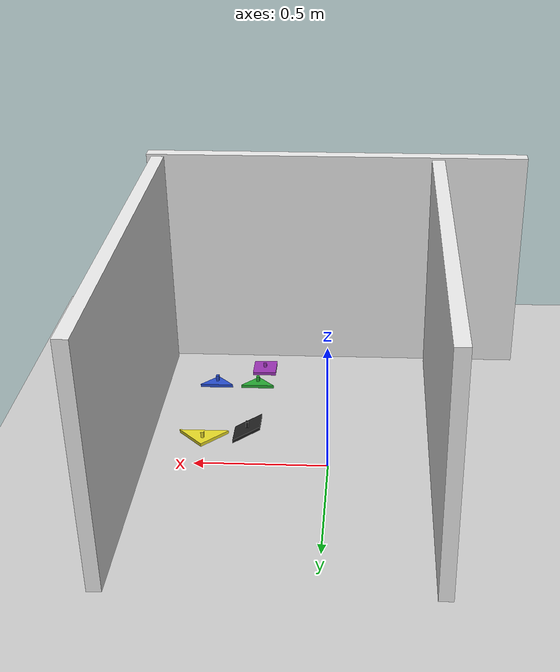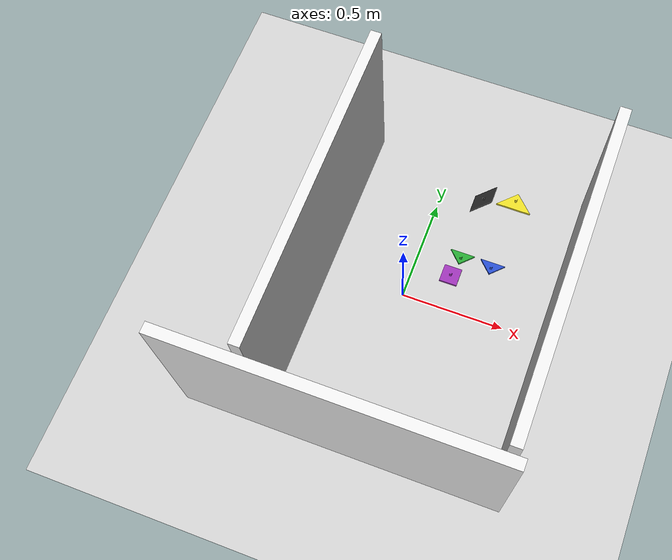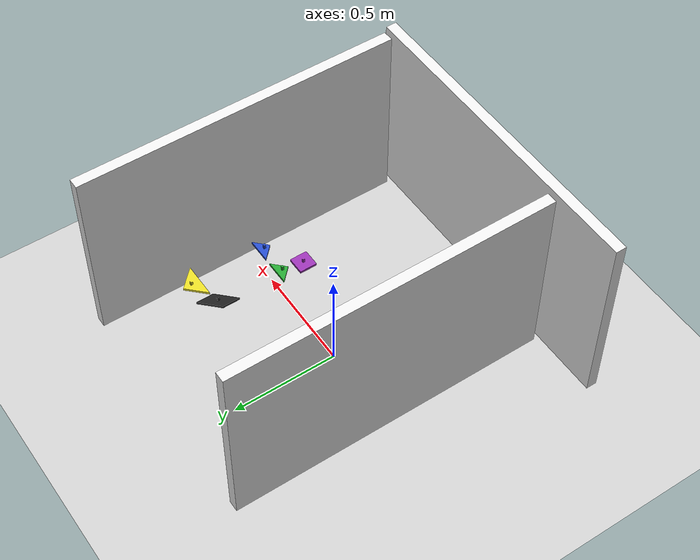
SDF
<sdf version="1.5">
 <world name="panda_pick_and_place">
  <include><uri>model://sun</uri></include>
  <include><uri>model://ground_plane</uri></include>
  <include><uri>model://tangram_3</uri><pose>0.2 0.3 0.41 0 0 0</pose></include>
  <include><uri>model://tangram_4</uri><pose>0.18 0.1 0.41 0 0 0</pose></include>
  <include><uri>model://tangram_5</uri><pose>0.32 0.1 0.41 0 0 0</pose></include>
  <include><uri>model://tangram_6</uri><pose>0.18 -0.03 0.42 0 0 0</pose></include>
  <include><uri>model://tangram_7</uri><pose>0.3 0.4 0.41 0 0 0</pose></include>
  <include><uri>model://flat_back</uri><pose>-0.4 0 0.481 0 0 0</pose></include>
  <include><uri>model://flat_front</uri><pose>0.7 0 0.481 0 0 0</pose></include>
  <include><uri>model://flat_right</uri><pose>0 -0.8 0.481 0 0 1.571</pose></include>
 </world>
</sdf>

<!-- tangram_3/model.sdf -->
<sdf version='1.7'>
  <model name='tangram_3'>
    <link name='tangram_3'>
      <inertial>
        <!--NOTE: Uses Polyethylene density to calculate the mass
        see https://en.wikipedia.org/wiki/Polyethylene
        -->
        <mass>0.00002</mass>
        <inertia  ixx="0.042939559330194194" ixy="0" ixz="0" iyy="0.01186916406652232" iyz="0" izz="0.051605390063383175" />
      </inertial>
      <visual name='visual'>
        <geometry>
          <mesh>
            <uri>model://tangram_3/B2_coordinate_fixedv1.stl</uri>
            <scale>0.0001 0.0001 0.0001</scale>
          </mesh>
        </geometry>
        <material>
          <script>
            <uri>file://media/materials/scripts/gazebo.material</uri>
            <name>Gazebo/Black</name>
          </script>
          <shader type='pixel'/>
        </material>
      </visual>
      <collision name='collision'>
        <geometry>
          <mesh>
            <uri>model://tangram_3/B2_coordinate_fixedv1.stl</uri>
            <scale>0.0001 0.0001 0.0001</scale>
          </mesh>
        </geometry>
        <surface>
          <!--NOTE: Uses dynamic friction of brick on a wood surface
          see https://www.engineeringtoolbox.com/friction-coefficients-d_778.html
          -->
          <friction>
            <ode>
              <mu>0.60</mu>
              <mu2>0.60</mu2>
              <fdir1>0 0 0</fdir1>
              <slip1>0</slip1>
              <slip2>0</slip2>
            </ode>
            <torsional>
              <coefficient>1</coefficient>
              <patch_radius>0</patch_radius>
              <surface_radius>0</surface_radius>
              <use_patch_radius>1</use_patch_radius>
              <ode>
                <slip>0</slip>
              </ode>
            </torsional>
          </friction>
          <bounce>
            <restitution_coefficient>0</restitution_coefficient>
            <threshold>1e+06</threshold>
          </bounce>
          <contact>
            <collide_without_contact>0</collide_without_contact>
            <collide_without_contact_bitmask>1</collide_without_contact_bitmask>
            <collide_bitmask>1</collide_bitmask>
            <ode>
              <soft_cfm>0</soft_cfm>
              <soft_erp>0.2</soft_erp>
              <kp>1e+13</kp>
              <kd>1</kd>
              <max_vel>0</max_vel>
              <min_depth>0.003</min_depth>
            </ode>
            <bullet>
              <split_impulse>1</split_impulse>
              <split_impulse_penetration_threshold>-0.01</split_impulse_penetration_threshold>
              <soft_cfm>0</soft_cfm>
              <soft_erp>0.2</soft_erp>
              <kp>1e+13</kp>
              <kd>1</kd>
            </bullet>
          </contact>
        </surface>
      </collision>
    </link>
  </model>
</sdf>

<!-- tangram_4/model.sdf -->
<sdf version='1.7'>
  <model name='tangram_4'>
    <link name='tangram_4'>
      <inertial>
        <!--NOTE: Uses Polyethylene density to calculate the mass
        see https://en.wikipedia.org/wiki/Polyethylene
        -->
        <mass>0.00002</mass>
        <inertia  ixx="0.006764475707980556" ixy="0" ixz="0" iyy="0.022252902831922224" iyz="0" izz="0.025814045206569443" />
      </inertial>
      <visual name='visual'>
        <geometry>
          <mesh>
            <uri>model://tangram_4/C1x2_coordinate_fixedv1.stl</uri>
            <scale>0.0001 0.0001 0.0001</scale>
          </mesh>
        </geometry>
        <material>
          <script>
            <uri>file://media/materials/scripts/gazebo.material</uri>
            <name>Gazebo/Green</name>
          </script>
          <shader type='pixel'/>
        </material>
      </visual>
      <collision name='collision'>
        <geometry>
          <mesh>
            <uri>model://tangram_4/C1x2_coordinate_fixedv1.stl</uri>
            <scale>0.0001 0.0001 0.0001</scale>
          </mesh>
        </geometry>
        <surface>
          <!--NOTE: Uses dynamic friction of brick on a wood surface
          see https://www.engineeringtoolbox.com/friction-coefficients-d_778.html
          -->
          <friction>
            <ode>
              <mu>0.60</mu>
              <mu2>0.60</mu2>
              <fdir1>0 0 0</fdir1>
              <slip1>0</slip1>
              <slip2>0</slip2>
            </ode>
            <torsional>
              <coefficient>1</coefficient>
              <patch_radius>0</patch_radius>
              <surface_radius>0</surface_radius>
              <use_patch_radius>1</use_patch_radius>
              <ode>
                <slip>0</slip>
              </ode>
            </torsional>
          </friction>
          <bounce>
            <restitution_coefficient>0</restitution_coefficient>
            <threshold>1e+06</threshold>
          </bounce>
          <contact>
            <collide_without_contact>0</collide_without_contact>
            <collide_without_contact_bitmask>1</collide_without_contact_bitmask>
            <collide_bitmask>1</collide_bitmask>
            <ode>
              <soft_cfm>0</soft_cfm>
              <soft_erp>0.2</soft_erp>
              <kp>1e+13</kp>
              <kd>1</kd>
              <max_vel>0</max_vel>
              <min_depth>0.003</min_depth>
            </ode>
            <bullet>
              <split_impulse>1</split_impulse>
              <split_impulse_penetration_threshold>-0.01</split_impulse_penetration_threshold>
              <soft_cfm>0</soft_cfm>
              <soft_erp>0.2</soft_erp>
              <kp>1e+13</kp>
              <kd>1</kd>
            </bullet>
          </contact>
        </surface>
      </collision>
    </link>
  </model>
</sdf>

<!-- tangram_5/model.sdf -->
<sdf version='1.7'>
  <model name='tangram_5'>
    <link name='tangram_5'>
      <inertial>
        <!--NOTE: Uses Polyethylene density to calculate the mass
        see https://en.wikipedia.org/wiki/Polyethylene
        -->
        <mass>0.00002</mass>
        <inertia  ixx="0.006764475707980556" ixy="0" ixz="0" iyy="0.022252902831922224" iyz="0" izz="0.025814045206569443" />
      </inertial>
      <visual name='visual'>
        <geometry>
          <mesh>
            <uri>model://tangram_5/C1x2_coordinate_fixedv1.stl</uri>
            <scale>0.0001 0.0001 0.0001</scale>
          </mesh>
        </geometry>
        <material>
          <script>
            <uri>file://media/materials/scripts/gazebo.material</uri>
            <name>Gazebo/Blue</name>
          </script>
          <shader type='pixel'/>
        </material>
      </visual>
      <collision name='collision'>
        <geometry>
          <mesh>
            <uri>model://tangram_5/C1x2_coordinate_fixedv1.stl</uri>
            <scale>0.0001 0.0001 0.0001</scale>
          </mesh>
        </geometry>
        <surface>
          <!--NOTE: Uses dynamic friction of brick on a wood surface
          see https://www.engineeringtoolbox.com/friction-coefficients-d_778.html
          -->
          <friction>
            <ode>
              <mu>0.60</mu>
              <mu2>0.60</mu2>
              <fdir1>0 0 0</fdir1>
              <slip1>0</slip1>
              <slip2>0</slip2>
            </ode>
            <torsional>
              <coefficient>1</coefficient>
              <patch_radius>0</patch_radius>
              <surface_radius>0</surface_radius>
              <use_patch_radius>1</use_patch_radius>
              <ode>
                <slip>0</slip>
              </ode>
            </torsional>
          </friction>
          <bounce>
            <restitution_coefficient>0</restitution_coefficient>
            <threshold>1e+06</threshold>
          </bounce>
          <contact>
            <collide_without_contact>0</collide_without_contact>
            <collide_without_contact_bitmask>1</collide_without_contact_bitmask>
            <collide_bitmask>1</collide_bitmask>
            <ode>
              <soft_cfm>0</soft_cfm>
              <soft_erp>0.2</soft_erp>
              <kp>1e+13</kp>
              <kd>1</kd>
              <max_vel>0</max_vel>
              <min_depth>0.003</min_depth>
            </ode>
            <bullet>
              <split_impulse>1</split_impulse>
              <split_impulse_penetration_threshold>-0.01</split_impulse_penetration_threshold>
              <soft_cfm>0</soft_cfm>
              <soft_erp>0.2</soft_erp>
              <kp>1e+13</kp>
              <kd>1</kd>
            </bullet>
          </contact>
        </surface>
      </collision>
    </link>
  </model>
</sdf>

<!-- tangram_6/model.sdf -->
<sdf version='1.7'>
  <model name='tangram_6'>
    <link name='tangram_6'>
      <inertial>
        <!--NOTE: Uses Polyethylene density to calculate the mass
        see https://en.wikipedia.org/wiki/Polyethylene
        -->
        <mass>0.00002</mass>
        <inertia  ixx="0.012003333333333333" ixy="0" ixz="0" iyy="0.012003333333333333" iyz="0" izz="0.020803333333333333" />
      </inertial>
      <visual name='visual'>
        <geometry>
          <mesh>
            <uri>model://tangram_6/D2_coordinate_fixedv1.stl</uri>
            <scale>0.0001 0.0001 0.0001</scale>
          </mesh>
        </geometry>
        <material>
          <script>
            <uri>file://media/materials/scripts/gazebo.material</uri>
            <name>Gazebo/Purple</name>
          </script>
          <shader type='pixel'/>
        </material>
      </visual>
      <collision name='collision'>
        <geometry>
          <mesh>
            <uri>model://tangram_6/D2_coordinate_fixedv1.stl</uri>
            <scale>0.0001 0.0001 0.0001</scale>
          </mesh>
        </geometry>
        <surface>
          <!--NOTE: Uses dynamic friction of brick on a wood surface
          see https://www.engineeringtoolbox.com/friction-coefficients-d_778.html
          -->
          <friction>
            <ode>
              <mu>0.60</mu>
              <mu2>0.60</mu2>
              <fdir1>0 0 0</fdir1>
              <slip1>0</slip1>
              <slip2>0</slip2>
            </ode>
            <torsional>
              <coefficient>1</coefficient>
              <patch_radius>0</patch_radius>
              <surface_radius>0</surface_radius>
              <use_patch_radius>1</use_patch_radius>
              <ode>
                <slip>0</slip>
              </ode>
            </torsional>
          </friction>
          <bounce>
            <restitution_coefficient>0</restitution_coefficient>
            <threshold>1e+06</threshold>
          </bounce>
          <contact>
            <collide_without_contact>0</collide_without_contact>
            <collide_without_contact_bitmask>1</collide_without_contact_bitmask>
            <collide_bitmask>1</collide_bitmask>
            <ode>
              <soft_cfm>0</soft_cfm>
              <soft_erp>0.2</soft_erp>
              <kp>1e+13</kp>
              <kd>1</kd>
              <max_vel>0</max_vel>
              <min_depth>0.003</min_depth>
            </ode>
            <bullet>
              <split_impulse>1</split_impulse>
              <split_impulse_penetration_threshold>-0.01</split_impulse_penetration_threshold>
              <soft_cfm>0</soft_cfm>
              <soft_erp>0.2</soft_erp>
              <kp>1e+13</kp>
              <kd>1</kd>
            </bullet>
          </contact>
        </surface>
      </collision>
    </link>
  </model>
</sdf>

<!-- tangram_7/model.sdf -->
<sdf version='1.7'>
  <model name='tangram_7'>
    <link name='tangram_7'>
      <inertial>
        <!--NOTE: Uses Polyethylene density to calculate the mass
        see https://en.wikipedia.org/wiki/Polyethylene
        -->
        <mass>0.00002</mass>
        <inertia  ixx="0.012003333333333333" ixy="0" ixz="0" iyy="0.043208333333333335" iyz="0" izz="0.05200833333333334" />
      </inertial>
      <visual name='visual'>
        <geometry>
          <mesh>
            <uri>model://tangram_7/E2_coordinate_fixedv1.stl</uri>
            <scale>0.0001 0.0001 0.0001</scale>
          </mesh>
        </geometry>
        <material>
          <script>
            <uri>file://media/materials/scripts/gazebo.material</uri>
            <name>Gazebo/Yellow</name>
          </script>
          <shader type='pixel'/>
        </material>
      </visual>
      <collision name='collision'>
        <geometry>
          <mesh>
            <uri>model://tangram_7/E2_coordinate_fixedv1.stl</uri>
            <scale>0.0001 0.0001 0.0001</scale>
          </mesh>
        </geometry>
        <surface>
          <!--NOTE: Uses dynamic friction of brick on a wood surface
          see https://www.engineeringtoolbox.com/friction-coefficients-d_778.html
          -->
          <friction>
            <ode>
              <mu>0.60</mu>
              <mu2>0.60</mu2>
              <fdir1>0 0 0</fdir1>
              <slip1>0</slip1>
              <slip2>0</slip2>
            </ode>
            <torsional>
              <coefficient>1</coefficient>
              <patch_radius>0</patch_radius>
              <surface_radius>0</surface_radius>
              <use_patch_radius>1</use_patch_radius>
              <ode>
                <slip>0</slip>
              </ode>
            </torsional>
          </friction>
          <bounce>
            <restitution_coefficient>0</restitution_coefficient>
            <threshold>1e+06</threshold>
          </bounce>
          <contact>
            <collide_without_contact>0</collide_without_contact>
            <collide_without_contact_bitmask>1</collide_without_contact_bitmask>
            <collide_bitmask>1</collide_bitmask>
            <ode>
              <soft_cfm>0</soft_cfm>
              <soft_erp>0.2</soft_erp>
              <kp>1e+13</kp>
              <kd>1</kd>
              <max_vel>0</max_vel>
              <min_depth>0.003</min_depth>
            </ode>
            <bullet>
              <split_impulse>1</split_impulse>
              <split_impulse_penetration_threshold>-0.01</split_impulse_penetration_threshold>
              <soft_cfm>0</soft_cfm>
              <soft_erp>0.2</soft_erp>
              <kp>1e+13</kp>
              <kd>1</kd>
            </bullet>
          </contact>
        </surface>
      </collision>
    </link>
  </model>
</sdf>

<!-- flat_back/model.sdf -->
<sdf version='1.7'>
  <model name='flat_back'>
    <link name='link_flat_back'>
      <inertial>
        <mass>10</mass>
        <inertia>
          <ixx>0.166667</ixx>
          <ixy>0</ixy>
          <ixz>0</ixz>
          <iyy>0.166667</iyy>
          <iyz>0</iyz>
          <izz>0.166667</izz>
        </inertia>
      </inertial>
      <self_collide>0</self_collide>
      <enable_wind>0</enable_wind>
      <kinematic>0</kinematic>
      <pose>0 0 0 0 -0 0</pose>
      <visual name='visual'>
        <pose>0 0 0 0 -0 0</pose>
        <geometry>
          <box>
            <size>0.05 1.5 0.9</size>
          </box>
        </geometry>
        <material>
          <script>
            <uri>file://media/materials/scripts/gazebo.material</uri>
            <name>Gazebo/White</name>
          </script>
          <shader type='pixel'/>
        </material>
        <transparency>0</transparency>
        <cast_shadows>1</cast_shadows>
      </visual>
      <collision name='collision'>
        <laser_retro>0</laser_retro>
        <max_contacts>10</max_contacts>
        <pose>0 0 0 0 -0 0</pose>
        <geometry>
          <box>
            <size>0.05 1.5 0.9</size>
          </box>
        </geometry>
        <surface>
          <friction>
            <ode>
              <mu>1</mu>
              <mu2>1</mu2>
              <fdir1>0 0 0</fdir1>
              <slip1>0</slip1>
              <slip2>0</slip2>
            </ode>
            <torsional>
              <coefficient>1</coefficient>
              <patch_radius>0</patch_radius>
              <surface_radius>0</surface_radius>
              <use_patch_radius>1</use_patch_radius>
              <ode>
                <slip>0</slip>
              </ode>
            </torsional>
          </friction>
          <bounce>
            <restitution_coefficient>0</restitution_coefficient>
            <threshold>1e+06</threshold>
          </bounce>
          <contact>
            <collide_without_contact>0</collide_without_contact>
            <collide_without_contact_bitmask>1</collide_without_contact_bitmask>
            <collide_bitmask>1</collide_bitmask>
            <ode>
              <soft_cfm>0</soft_cfm>
              <soft_erp>0.2</soft_erp>
              <kp>1e+13</kp>
              <kd>1</kd>
              <max_vel>0.01</max_vel>
              <min_depth>0</min_depth>
            </ode>
            <bullet>
              <split_impulse>1</split_impulse>
              <split_impulse_penetration_threshold>-0.01</split_impulse_penetration_threshold>
              <soft_cfm>0</soft_cfm>
              <soft_erp>0.2</soft_erp>
              <kp>1e+13</kp>
              <kd>1</kd>
            </bullet>
          </contact>
        </surface>
      </collision>
      <gazebo reference="flat_back"></gazebo>
    </link>
    <allow_auto_disable>1</allow_auto_disable>
  </model>
</sdf>

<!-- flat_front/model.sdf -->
<sdf version='1.7'>
  <model name='flat_front'>
    <link name='link_flat_front'>
      <inertial>
        <mass>10</mass>
        <inertia>
          <ixx>0.166667</ixx>
          <ixy>0</ixy>
          <ixz>0</ixz>
          <iyy>0.166667</iyy>
          <iyz>0</iyz>
          <izz>0.166667</izz>
        </inertia>
      </inertial>
      <self_collide>0</self_collide>
      <enable_wind>0</enable_wind>
      <kinematic>0</kinematic>
      <pose>0 0 0 0 -0 0</pose>
      <visual name='visual'>
        <pose>0 0 0 0 -0 0</pose>
        <geometry>
          <box>
            <size>0.05 1.5 0.9</size>
          </box>
        </geometry>
        <material>
          <script>
            <uri>file://media/materials/scripts/gazebo.material</uri>
            <name>Gazebo/White</name>
          </script>
          <shader type='pixel'/>
        </material>
        <transparency>0</transparency>
        <cast_shadows>1</cast_shadows>
      </visual>
      <collision name='collision'>
        <laser_retro>0</laser_retro>
        <max_contacts>10</max_contacts>
        <pose>0 0 0 0 -0 0</pose>
        <geometry>
          <box>
            <size>0.05 1.5 0.9</size>
          </box>
        </geometry>
        <surface>
          <friction>
            <ode>
              <mu>1</mu>
              <mu2>1</mu2>
              <fdir1>0 0 0</fdir1>
              <slip1>0</slip1>
              <slip2>0</slip2>
            </ode>
            <torsional>
              <coefficient>1</coefficient>
              <patch_radius>0</patch_radius>
              <surface_radius>0</surface_radius>
              <use_patch_radius>1</use_patch_radius>
              <ode>
                <slip>0</slip>
              </ode>
            </torsional>
          </friction>
          <bounce>
            <restitution_coefficient>0</restitution_coefficient>
            <threshold>1e+06</threshold>
          </bounce>
          <contact>
            <collide_without_contact>0</collide_without_contact>
            <collide_without_contact_bitmask>1</collide_without_contact_bitmask>
            <collide_bitmask>1</collide_bitmask>
            <ode>
              <soft_cfm>0</soft_cfm>
              <soft_erp>0.2</soft_erp>
              <kp>1e+13</kp>
              <kd>1</kd>
              <max_vel>0.01</max_vel>
              <min_depth>0</min_depth>
            </ode>
            <bullet>
              <split_impulse>1</split_impulse>
              <split_impulse_penetration_threshold>-0.01</split_impulse_penetration_threshold>
              <soft_cfm>0</soft_cfm>
              <soft_erp>0.2</soft_erp>
              <kp>1e+13</kp>
              <kd>1</kd>
            </bullet>
          </contact>
        </surface>
      </collision>
      <gazebo reference="flat_front"></gazebo>
    </link>
    <allow_auto_disable>1</allow_auto_disable>
  </model>
</sdf>

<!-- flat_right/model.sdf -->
<sdf version='1.7'>
  <model name='flat_right'>
    <link name='link_flat_right'>
      <inertial>
        <mass>10</mass>
        <inertia>
          <ixx>0.166667</ixx>
          <ixy>0</ixy>
          <ixz>0</ixz>
          <iyy>0.166667</iyy>
          <iyz>0</iyz>
          <izz>0.166667</izz>
        </inertia>
      </inertial>
      <self_collide>0</self_collide>
      <enable_wind>0</enable_wind>
      <kinematic>0</kinematic>
      <pose>0 0 0 0 -0 0</pose>
      <visual name='visual'>
        <pose>0 0 0 0 -0 0</pose>
        <geometry>
          <box>
            <size>0.05 1.5 0.9</size>
          </box>
        </geometry>
        <material>
          <script>
            <uri>file://media/materials/scripts/gazebo.material</uri>
            <name>Gazebo/White</name>
          </script>
          <shader type='pixel'/>
        </material>
        <transparency>0</transparency>
        <cast_shadows>1</cast_shadows>
      </visual>
      <collision name='collision'>
        <laser_retro>0</laser_retro>
        <max_contacts>10</max_contacts>
        <pose>0 0 0 0 -0 0</pose>
        <geometry>
          <box>
            <size>0.05 1.5 0.9</size>
          </box>
        </geometry>
        <surface>
          <friction>
            <ode>
              <mu>1</mu>
              <mu2>1</mu2>
              <fdir1>0 0 0</fdir1>
              <slip1>0</slip1>
              <slip2>0</slip2>
            </ode>
            <torsional>
              <coefficient>1</coefficient>
              <patch_radius>0</patch_radius>
              <surface_radius>0</surface_radius>
              <use_patch_radius>1</use_patch_radius>
              <ode>
                <slip>0</slip>
              </ode>
            </torsional>
          </friction>
          <bounce>
            <restitution_coefficient>0</restitution_coefficient>
            <threshold>1e+06</threshold>
          </bounce>
          <contact>
            <collide_without_contact>0</collide_without_contact>
            <collide_without_contact_bitmask>1</collide_without_contact_bitmask>
            <collide_bitmask>1</collide_bitmask>
            <ode>
              <soft_cfm>0</soft_cfm>
              <soft_erp>0.2</soft_erp>
              <kp>1e+13</kp>
              <kd>1</kd>
              <max_vel>0.01</max_vel>
              <min_depth>0</min_depth>
            </ode>
            <bullet>
              <split_impulse>1</split_impulse>
              <split_impulse_penetration_threshold>-0.01</split_impulse_penetration_threshold>
              <soft_cfm>0</soft_cfm>
              <soft_erp>0.2</soft_erp>
              <kp>1e+13</kp>
              <kd>1</kd>
            </bullet>
          </contact>
        </surface>
      </collision>
      <gazebo reference="flat_right"></gazebo>
    </link>
    <allow_auto_disable>1</allow_auto_disable>
  </model>
</sdf>
